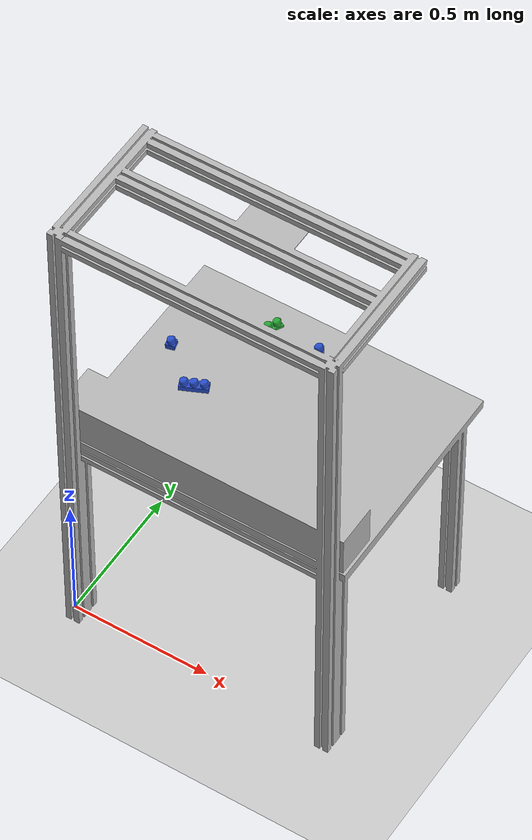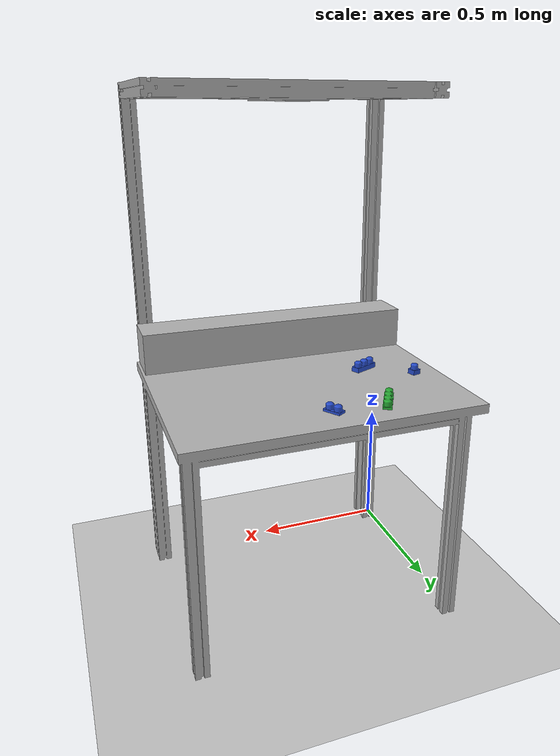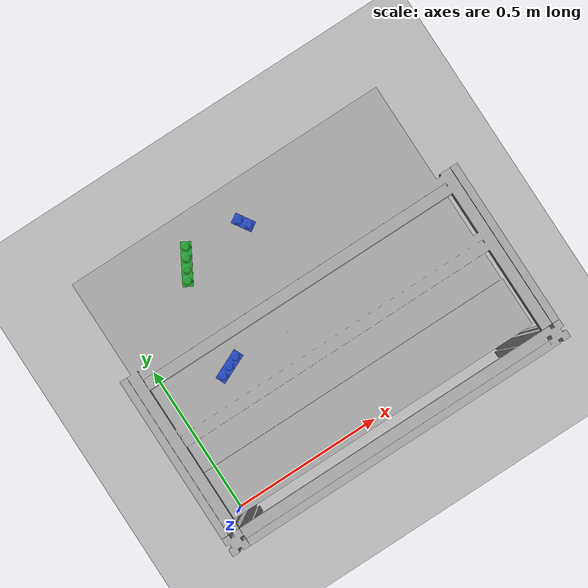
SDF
<?xml version="1.0" ?>
<sdf version="1.4">
  <world name="default">
    <physics type='ode'>
      <gravity>0 0 -9.81</gravity>
      <!-- max step size has to be a multiple of the desired task rate-->
      <max_step_size>0.001</max_step_size>
      <real_time_factor>1</real_time_factor>
    </physics>
    <!-- A global light source -->
    <include>
      <uri>model://sun</uri>
    </include>
    <!-- A ground plane -->
    <include>
      <uri>model://ground_plane</uri>
    </include>
    <include>
      <name>tavolo</name>
      <uri>model://tavolo</uri>
      <pose>0.0 0.0 0.0 0 0 0</pose>
    </include>

    <!-- BLOCKS  -->
    <include>
      <name>X1-Y2-Z1</name>
      <uri>model://X1-Y2-Z1</uri>
      <pose>0.479027 0.683284 0.875 0. 0. 0.564191</pose>
    </include>

    <include>
      <name>X1-Y4-Z1</name>
      <uri>model://X1-Y4-Z1</uri>
      <pose>0.281760 0.671702 0.875 0. 0. -0.518126</pose>
    </include>

    <include>
      <name>X1-Y1-Z2</name>
      <uri>model://X1-Y1-Z2</uri>
      <pose>0.073895 0.469251 0.875 0. 0. 0.241325</pose>
    </include>

    <include>
      <name>X1-Y3-Z2</name>
      <uri>model://X1-Y3-Z2</uri>
      <pose>0.225760 0.365218 0.875 0. 0. -1.146839</pose>
    </include>

     <gui>
    <camera name="gzclient_camera">
      <pose>1. 3.2 2.2 0. 0.4 -1.75</pose>
    </camera>
    </gui>

  </world>
</sdf>

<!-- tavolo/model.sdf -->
<sdf version="1.4">

<physics type="ode">

      <ode>

        <constraints>
          <contact_max_correcting_vel>0.1</contact_max_correcting_vel>
          <contact_surface_layer>0.0001</contact_surface_layer>
        </constraints>
      </ode>
	<max_contacts>10</max_contacts>
	</physics>

	<model name="tavolo">
	    <static>true</static>
		<link name="link">

		     <collision name="base">
			<pose>0.5 0.4 0.85 0 0 0</pose>
			<geometry>
			  <box>
			    <size>1 0.8 0.04</size>
			  </box>
			</geometry>

				<!-- see https://gazebosim.org/tutorials?tut=physics_params&cat=physics-->
				 <surface>
				  <bounce>
				    <restitution_coefficient>0.01</restitution_coefficient>
				    <threshold>5.0</threshold>
				  </bounce>
				  <friction>
				    <ode>
				      <mu>10</mu>
				      <mu2>10</mu2>
				    </ode>
				  </friction>
				  <contact>
				     <ode>
					<max_vel>0.1</max_vel>
					<min_depth>0.001</min_depth>
				        <kp>1000000.0</kp>
					<kd>1000.0</kd>
				      </ode>
			            </contact>
				</surface>

		     	</collision>

	     			<collision name="box">
				<pose>0.5 0.08 0.95 0 0 0</pose>
				<geometry>
				  <box>
				    <size>1 0.15 0.15</size>
				  </box>
				</geometry>

				 <surface>
				  <bounce>
				    <restitution_coefficient>0.01</restitution_coefficient>
				    <threshold>5.0</threshold>
				  </bounce>
				  <friction>
				    <ode>
				      <mu>10</mu>
				      <mu2>10</mu2>
				    </ode>
				  </friction>
				  <contact>
				     <ode>
					<max_vel>0.1</max_vel>
					<min_depth>0.001</min_depth>
				        <kp>1000000.0</kp>
					<kd>1000.0</kd>
				      </ode>
			            </contact>
				</surface>

			      </collision>

			   <collision name="back">
				<pose>0.5 -0.02 1.35 1.57 0 0</pose>
				<geometry>
				  <box>
				    <size>1 1.0 0.04</size>
				  </box>
				</geometry>

				 <surface>
				  <bounce>
				    <restitution_coefficient>0.01</restitution_coefficient>
				    <threshold>5.0</threshold>
				  </bounce>
				  <friction>
				    <ode>
				      <mu>10</mu>
				      <mu2>10</mu2>
				    </ode>
				  </friction>
				  <contact>
				     <ode>
					<max_vel>0.1</max_vel>
					<min_depth>0.001</min_depth>
				        <kp>1000000.0</kp>
					<kd>1000.0</kd>
				      </ode>
			            </contact>
				</surface>

			      </collision>

			<visual name="visual">
				<geometry>
					<mesh>
						<uri>model://tavolo/mesh/tavolo.stl</uri>
                                                <scale>0.001 0.001 0.001</scale>
					</mesh>
				</geometry>
			</visual>
		</link>
	</model>
</sdf>

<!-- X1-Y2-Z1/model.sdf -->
<sdf version="1.4">

	<model name="X1-Y2-Z1">
		<static>false</static>
		<link name="link">
			<collision name="collision">
				<geometry>
					<mesh>
						<uri>model://X1-Y2-Z1/meshes/X1-Y2-Z1.stl</uri>
						<scale>1 1 1</scale>
					</mesh>
				</geometry>
			</collision>

			<visual name="visual">
				<geometry>
					<mesh>
						<uri>model://X1-Y2-Z1/meshes/X1-Y2-Z1.stl</uri>
						<scale>1 1 1</scale>
					</mesh>
				</geometry>

				<material>
          <script>
						<uri>model://materials/custom_BLUE.material</uri>
						<name>Custom/Blue</name>
					</script>
        </material>

			</visual>
		</link>
	</model>
</sdf>

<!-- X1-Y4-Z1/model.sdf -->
<sdf version="1.4">

	<model name="X1-Y4-Z1">
		<static>false</static>
		<link name="link">
			<collision name="collision">
				<geometry>
					<mesh>
						<uri>model://X1-Y4-Z1/meshes/X1-Y4-Z1.stl</uri>
						<scale>1 1 1</scale>
					</mesh>
				</geometry>
			</collision>

			<visual name="visual">
				<geometry>
					<mesh>
						<uri>model://X1-Y4-Z1/meshes/X1-Y4-Z1.stl</uri>
						<scale>1 1 1</scale>
					</mesh>
				</geometry>

				<material>
          <script>
						<uri>model://materials/custom_GREEN.material</uri>
						<name>Custom/Green</name>
					</script>
        </material>

			</visual>
		</link>
	</model>
</sdf>

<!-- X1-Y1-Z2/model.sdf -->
<sdf version="1.4">

	<model name="X1-Y1-Z2">
		<static>false</static>
		<link name="link">
			<collision name="collision">
				<geometry>
					<mesh>
						<uri>model://X1-Y1-Z2/meshes/X1-Y1-Z2.stl</uri>
						<scale>1 1 1</scale>
					</mesh>
				</geometry>
			</collision>

			<visual name="visual">
				<geometry>
					<mesh>
						<uri>model://X1-Y1-Z2/meshes/X1-Y1-Z2.stl</uri>
						<scale>1 1 1</scale>
					</mesh>
				</geometry>

				<material>
          <script>
						<uri>model://materials/custom_LIGHT_BLUE.material</uri>
						<name>Custom/Light_Blue</name>
					</script>
        </material>

			</visual>
		</link>
	</model>
</sdf>

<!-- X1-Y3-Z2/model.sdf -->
<sdf version="1.4">

	<model name="X1-Y3-Z2">
		<static>false</static>
		<link name="link">
			<collision name="collision">
				<geometry>
					<mesh>
						<uri>model://X1-Y3-Z2/meshes/X1-Y3-Z2.stl</uri>
						<scale>1 1 1</scale>
					</mesh>
				</geometry>
			</collision>

			<visual name="visual">
				<geometry>
					<mesh>
						<uri>model://X1-Y3-Z2/meshes/X1-Y3-Z2.stl</uri>
						<scale>1 1 1</scale>
					</mesh>
				</geometry>

				<material>
          <script>
						<uri>model://materials/custom_BLUE.material</uri>
						<name>Custom/Blue</name>
					</script>
        </material>

			</visual>
		</link>
	</model>
</sdf>
